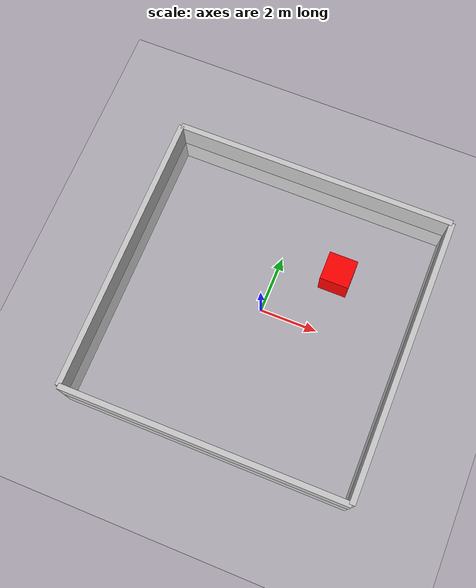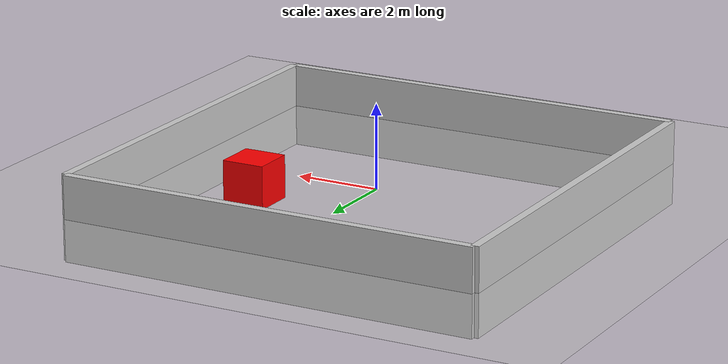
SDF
<?xml version="1.0" ?>
<sdf version="1.7">
  <world name="digital_twin_world">
    <!-- Include the sun -->
    <include>
      <uri>model://sun</uri>
    </include>

    <!-- Ground plane -->
    <include>
      <uri>model://ground_plane</uri>
    </include>

    <!-- Create a simple environment with basic objects -->
    <!-- Walls -->
    <model name="wall_1">
      <pose>0 5 0 0 0 0</pose>
      <link name="wall_1_link">
        <visual name="visual">
          <geometry>
            <box>
              <size>10 0.2 2</size>
            </box>
          </geometry>
          <material>
            <ambient>0.5 0.5 0.5 1</ambient>
            <diffuse>0.8 0.8 0.8 1</diffuse>
          </material>
        </visual>
        <collision name="collision">
          <geometry>
            <box>
              <size>10 0.2 2</size>
            </box>
          </geometry>
        </collision>
        <inertial>
          <mass>100</mass>
          <inertia>
            <ixx>1</ixx>
            <ixy>0</ixy>
            <ixz>0</ixz>
            <iyy>1</iyy>
            <iyz>0</iyz>
            <izz>1</izz>
          </inertia>
        </inertial>
      </link>
    </model>

    <model name="wall_2">
      <pose>5 0 0 0 0 1.5708</pose>
      <link name="wall_2_link">
        <visual name="visual">
          <geometry>
            <box>
              <size>10 0.2 2</size>
            </box>
          </geometry>
          <material>
            <ambient>0.5 0.5 0.5 1</ambient>
            <diffuse>0.8 0.8 0.8 1</diffuse>
          </material>
        </visual>
        <collision name="collision">
          <geometry>
            <box>
              <size>10 0.2 2</size>
            </box>
          </geometry>
        </collision>
        <inertial>
          <mass>100</mass>
          <inertia>
            <ixx>1</ixx>
            <ixy>0</ixy>
            <ixz>0</ixz>
            <iyy>1</iyy>
            <iyz>0</iyz>
            <izz>1</izz>
          </inertia>
        </inertial>
      </link>
    </model>

    <model name="wall_3">
      <pose>0 -5 0 0 0 0</pose>
      <link name="wall_3_link">
        <visual name="visual">
          <geometry>
            <box>
              <size>10 0.2 2</size>
            </box>
          </geometry>
          <material>
            <ambient>0.5 0.5 0.5 1</ambient>
            <diffuse>0.8 0.8 0.8 1</diffuse>
          </material>
        </visual>
        <collision name="collision">
          <geometry>
            <box>
              <size>10 0.2 2</size>
            </box>
          </geometry>
        </collision>
        <inertial>
          <mass>100</mass>
          <inertia>
            <ixx>1</ixx>
            <ixy>0</ixy>
            <ixz>0</ixz>
            <iyy>1</iyy>
            <iyz>0</iyz>
            <izz>1</izz>
          </inertia>
        </inertial>
      </link>
    </model>

    <model name="wall_4">
      <pose>-5 0 0 0 0 1.5708</pose>
      <link name="wall_4_link">
        <visual name="visual">
          <geometry>
            <box>
              <size>10 0.2 2</size>
            </box>
          </geometry>
          <material>
            <ambient>0.5 0.5 0.5 1</ambient>
            <diffuse>0.8 0.8 0.8 1</diffuse>
          </material>
        </visual>
        <collision name="collision">
          <geometry>
            <box>
              <size>10 0.2 2</size>
            </box>
          </geometry>
        </collision>
        <inertial>
          <mass>100</mass>
          <inertia>
            <ixx>1</ixx>
            <ixy>0</ixy>
            <ixz>0</ixz>
            <iyy>1</iyy>
            <iyz>0</iyz>
            <izz>1</izz>
          </inertia>
        </inertial>
      </link>
    </model>

    <!-- Add a simple obstacle -->
    <model name="obstacle">
      <pose>2 2 0.5 0 0 0</pose>
      <link name="obstacle_link">
        <visual name="visual">
          <geometry>
            <box>
              <size>1 1 1</size>
            </box>
          </geometry>
          <material>
            <ambient>1 0 0 1</ambient>
            <diffuse>1 0 0 1</diffuse>
          </material>
        </visual>
        <collision name="collision">
          <geometry>
            <box>
              <size>1 1 1</size>
            </box>
          </geometry>
        </collision>
        <inertial>
          <mass>10</mass>
          <inertia>
            <ixx>1</ixx>
            <ixy>0</ixy>
            <ixz>0</ixz>
            <iyy>1</iyy>
            <iyz>0</iyz>
            <izz>1</izz>
          </inertia>
        </inertial>
      </link>
    </model>

    <!-- Lighting for the environment -->
    <light name="spotlight_1" type="spot">
      <pose>0 0 5 0 0 0</pose>
      <diffuse>1 1 1 1</diffuse>
      <specular>0.5 0.5 0.5 1</specular>
      <attenuation>
        <range>10</range>
        <constant>0.9</constant>
        <linear>0.01</linear>
        <quadratic>0.001</quadratic>
      </attenuation>
      <direction>-0.5 0 -1</direction>
      <spot>
        <cutoff>20</cutoff>
        <exponent>10</exponent>
      </spot>
    </light>

    <!-- Physics engine configuration -->
    <physics name="1ms" type="ode">
      <max_step_size>0.001</max_step_size>
      <real_time_factor>1</real_time_factor>
      <real_time_update_rate>1000</real_time_update_rate>
    </physics>
  </world>
</sdf>
